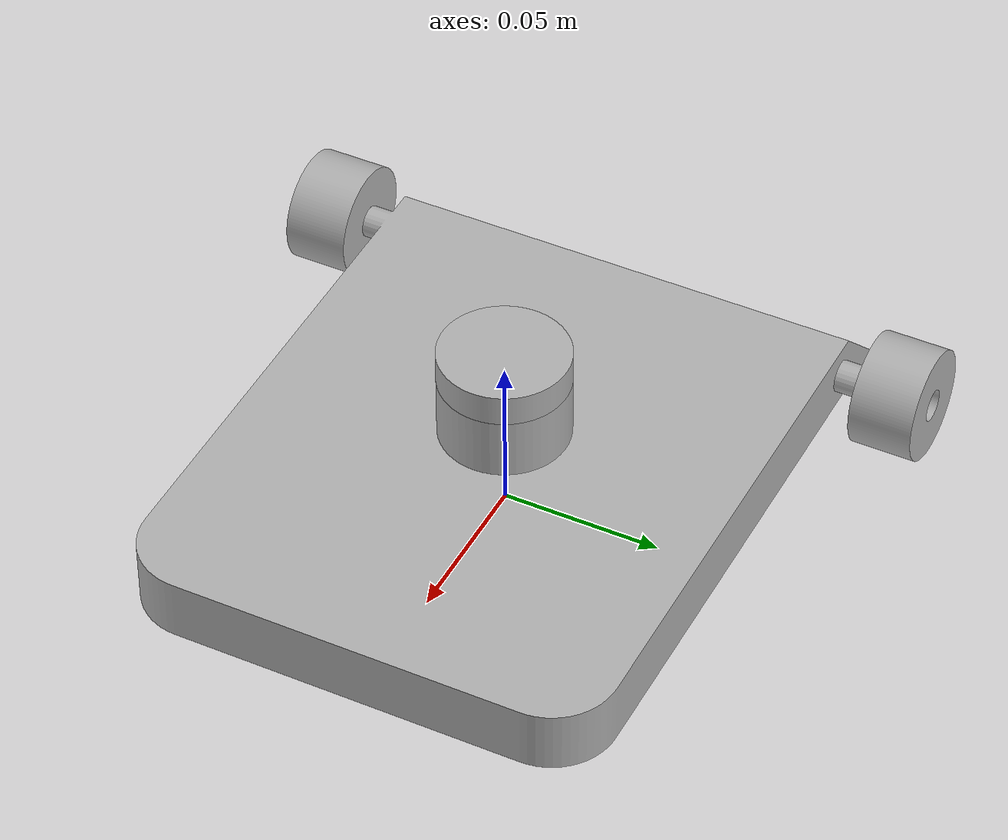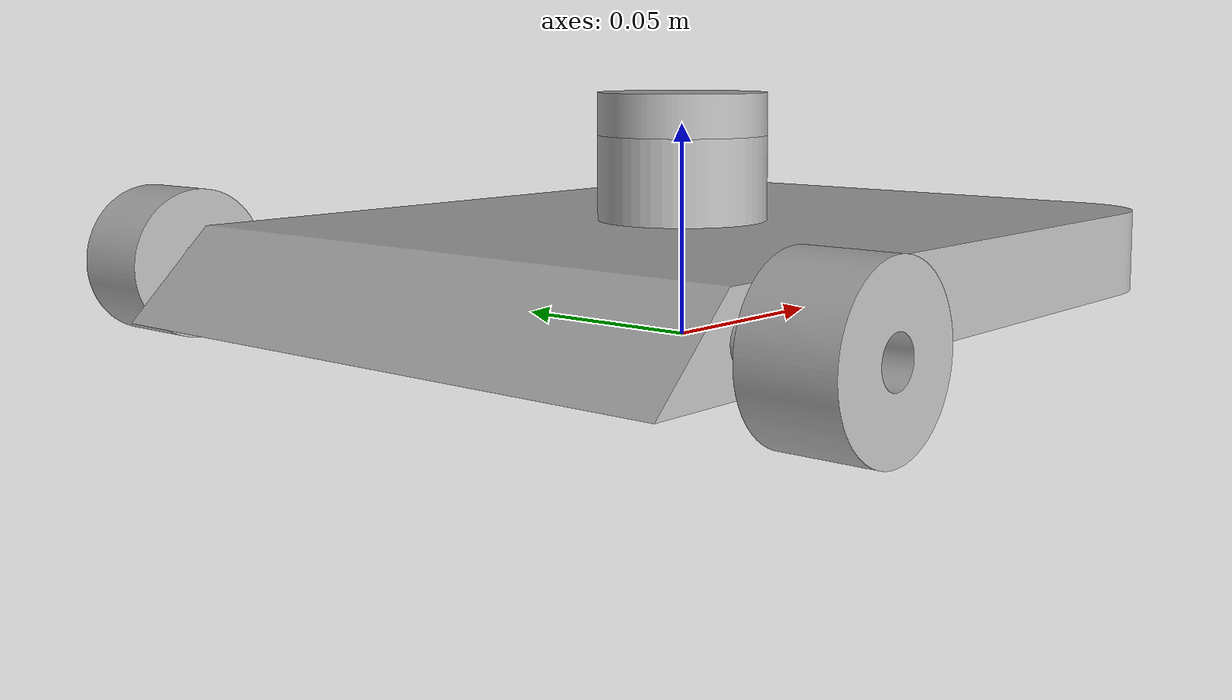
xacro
<?xml version="1.0" ?>
<robot name="rmp_ros2_bot" xmlns:xacro="http://www.ros.org/wiki/xacro">

<xacro:include filename="$(find rmp_ros2_bot_description)/models/urdf/materials.xacro" />
<xacro:include filename="$(find rmp_ros2_bot_description)/models/urdf/rmp_ros2_bot.trans" />
<xacro:include filename="$(find rmp_ros2_bot_description)/models/urdf/rmp_ros2_bot.gazebo" />
<link name="base_link">
  <inertial>
    <origin xyz="0.003968120679875503 0.0 0.018178704277815948" rpy="0 0 0"/>
    <mass value="0.6288661026600636"/>
    <inertia ixx="0.001159" iyy="0.001842" izz="0.002939" ixy="-0.0" iyz="0.0" ixz="-8e-06"/>
  </inertial>
  <visual>
    <origin xyz="0 0 0" rpy="0 0 0"/>
    <geometry>
      <mesh filename="file://$(find rmp_ros2_bot_description)/models/meshes/base_link.stl" scale="0.001 0.001 0.001"/>
    </geometry>
    <material name="silver"/>
  </visual>
  <collision>
    <origin xyz="0 0 0" rpy="0 0 0"/>
    <geometry>
      <mesh filename="file://$(find rmp_ros2_bot_description)/models/meshes/base_link.stl" scale="0.001 0.001 0.001"/>
    </geometry>
  </collision>
</link>

<link name="right_wheel_1">
  <inertial>
    <origin xyz="-4.6476711368370616e-14 -0.010000000000000009 0.0" rpy="0 0 0"/>
    <mass value="0.01643445656909154"/>
    <inertia ixx="2e-06" iyy="3e-06" izz="2e-06" ixy="0.0" iyz="-0.0" ixz="-0.0"/>
  </inertial>
  <visual>
    <origin xyz="0.075 0.085 -0.0175" rpy="0 0 0"/>
    <geometry>
      <mesh filename="file://$(find rmp_ros2_bot_description)/models/meshes/right_wheel_1.stl" scale="0.001 0.001 0.001"/>
    </geometry>
    <material name="silver"/>
  </visual>
  <collision>
    <origin xyz="0.075 0.085 -0.0175" rpy="0 0 0"/>
    <geometry>
      <mesh filename="file://$(find rmp_ros2_bot_description)/models/meshes/right_wheel_1.stl" scale="0.001 0.001 0.001"/>
    </geometry>
  </collision>
</link>

<link name="left_wheel_1">
  <inertial>
    <origin xyz="-4.6476711368370616e-14 0.009999999999999995 0.0" rpy="0 0 0"/>
    <mass value="0.01643445656909154"/>
    <inertia ixx="2e-06" iyy="3e-06" izz="2e-06" ixy="0.0" iyz="0.0" ixz="-0.0"/>
  </inertial>
  <visual>
    <origin xyz="0.075 -0.085 -0.0175" rpy="0 0 0"/>
    <geometry>
      <mesh filename="file://$(find rmp_ros2_bot_description)/models/meshes/left_wheel_1.stl" scale="0.001 0.001 0.001"/>
    </geometry>
    <material name="silver"/>
  </visual>
  <collision>
    <origin xyz="0.075 -0.085 -0.0175" rpy="0 0 0"/>
    <geometry>
      <mesh filename="file://$(find rmp_ros2_bot_description)/models/meshes/left_wheel_1.stl" scale="0.001 0.001 0.001"/>
    </geometry>
  </collision>
</link>

<link name="caster_1">
  <inertial>
    <origin xyz="-0.020000000000000004 0.0 -0.0027411366658398224" rpy="0 0 0"/>
    <mass value="0.011265385589639293"/>
    <inertia ixx="0.0" iyy="0.0" izz="0.0" ixy="-0.0" iyz="0.0" ixz="0.0"/>
  </inertial>
  <visual>
    <origin xyz="-0.1 -0.0 -0.0075" rpy="0 0 0"/>
    <geometry>
      <mesh filename="file://$(find rmp_ros2_bot_description)/models/meshes/caster_1.stl" scale="0.001 0.001 0.001"/>
    </geometry>
    <material name="silver"/>
  </visual>
  <collision>
    <origin xyz="-0.1 -0.0 -0.0075" rpy="0 0 0"/>
    <geometry>
      <mesh filename="file://$(find rmp_ros2_bot_description)/models/meshes/caster_1.stl" scale="0.001 0.001 0.001"/>
    </geometry>
  </collision>
</link>

<link name="lidar_1">
  <inertial>
    <origin xyz="0.0 -2.8271597168564596e-18 0.0049999999999999975" rpy="0 0 0"/>
    <mass value="0.0986460093227195"/>
    <inertia ixx="1.1e-05" iyy="1.1e-05" izz="2e-05" ixy="0.0" iyz="-0.0" ixz="-0.0"/>
  </inertial>
  <visual>
    <origin xyz="-0.0 -0.0 -0.0475" rpy="0 0 0"/>
    <geometry>
      <mesh filename="file://$(find rmp_ros2_bot_description)/models/meshes/lidar_1.stl" scale="0.001 0.001 0.001"/>
    </geometry>
    <material name="silver"/>
  </visual>
  <collision>
    <origin xyz="-0.0 -0.0 -0.0475" rpy="0 0 0"/>
    <geometry>
      <mesh filename="file://$(find rmp_ros2_bot_description)/models/meshes/lidar_1.stl" scale="0.001 0.001 0.001"/>
    </geometry>
  </collision>
</link>

<joint name="right_wheel_joint" type="continuous">
  <origin xyz="-0.075 -0.085 0.0175" rpy="0 0 0"/>
  <parent link="base_link"/>
  <child link="right_wheel_1"/>
  <axis xyz="0.0 1.0 0.0"/>
</joint>

<joint name="left_wheel_joint" type="continuous">
  <origin xyz="-0.075 0.085 0.0175" rpy="0 0 0"/>
  <parent link="base_link"/>
  <child link="left_wheel_1"/>
  <axis xyz="0.0 1.0 0.0"/>
</joint>

<joint name="caster_joint" type="fixed">
  <origin xyz="0.1 0.0 0.0075" rpy="0 0 0"/>
  <parent link="base_link"/>
  <child link="caster_1"/>
</joint>

<joint name="lidar_joint" type="fixed">
  <origin xyz="0.0 0.0 0.0475" rpy="0 0 0"/>
  <parent link="base_link"/>
  <child link="lidar_1"/>
</joint>

</robot>

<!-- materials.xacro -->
<robot name="rmp_ros2_bot" xmlns:xacro="http://www.ros.org/wiki/xacro" >

<material name="silver">
  <color rgba="0.700 0.700 0.700 1.000"/>
</material>

</robot>

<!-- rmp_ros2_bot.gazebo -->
<robot name="rmp_ros2_bot" xmlns:xacro="http://www.ros.org/wiki/xacro" >

<xacro:property name="body_color" value="Gazebo/Silver" />

<gazebo>
  <plugin name="control" filename="libgazebo_ros_control.so"/>
</gazebo>
<gazebo reference="base_link">
  <material>${body_color}</material>
  <mu1>0.2</mu1>
  <mu2>0.2</mu2>
  <selfCollide>true</selfCollide>
  <gravity>true</gravity>
</gazebo>

<gazebo reference="right_wheel_1">
  <material>${body_color}</material>
  <mu1>1.0</mu1>
  <mu2>1.0</mu2>
  <selfCollide>true</selfCollide>
</gazebo>

<gazebo reference="left_wheel_1">
  <material>${body_color}</material>
  <mu1>1.0</mu1>
  <mu2>1.0</mu2>
  <selfCollide>true</selfCollide>
</gazebo>

<gazebo reference="caster_1">
  <material>${body_color}</material>
  <mu1>0.01</mu1>
  <mu2>0.01</mu2>
  <selfCollide>true</selfCollide>
</gazebo>

<gazebo reference="lidar_1">
  <material>${body_color}</material>
  <mu1>0.2</mu1>
  <mu2>0.2</mu2>
  <selfCollide>true</selfCollide>
</gazebo>

<!-- Differential drive plugin for gazebo -->
	<gazebo>
	<plugin name='diff_drive' filename='libgazebo_ros_diff_drive.so'>
		<ros>
		</ros>

		<!-- wheels -->
		<left_joint>left_wheel_joint</left_joint>
		<right_joint>right_wheel_joint</right_joint>

		<!-- kinematics -->
		<wheel_separation>0.170</wheel_separation>
		<wheel_diameter>0.035</wheel_diameter>

		<!-- limits -->
		<max_wheel_torque>20</max_wheel_torque>
		<max_wheel_acceleration>1.0</max_wheel_acceleration>

		<!-- output -->
		<publish_odom>true</publish_odom>
		<publish_odom_tf>true</publish_odom_tf>
		<publish_wheel_tf>true</publish_wheel_tf>

		<odometry_frame>odom</odometry_frame>
		<robot_base_frame>base_link</robot_base_frame>
	</plugin>
	</gazebo>

	<!--  ##########  LIDAR PLUGIN  ##########  -->

	<gazebo reference="lidar_1">
		<sensor name="ydlidar" type="ray">
			<always_on>true</always_on>
			<visualize>true</visualize>
			<update_rate>10</update_rate>
			<ray>
			<scan>
				<horizontal>
				<samples>720</samples>
				<resolution>1.000000</resolution>
				<min_angle>-3.14</min_angle>
				<max_angle>3.14</max_angle>
				</horizontal>
			</scan>
			<range>
				<min>0.05</min>
				<max>20.0</max>
				<resolution>0.015000</resolution>
			</range>
			<noise>
				<type>gaussian</type>
				<mean>0.0</mean>
				<stddev>0.01</stddev>
			</noise>
			</ray>
			<plugin name="scan" filename="libgazebo_ros_ray_sensor.so">
			<ros>
				<remapping>~/out:=scan</remapping>
			</ros>
			<output_type>sensor_msgs/LaserScan</output_type>
			<frame_name>lidar_1</frame_name>
			</plugin>
		</sensor>
		</gazebo>

</robot>
